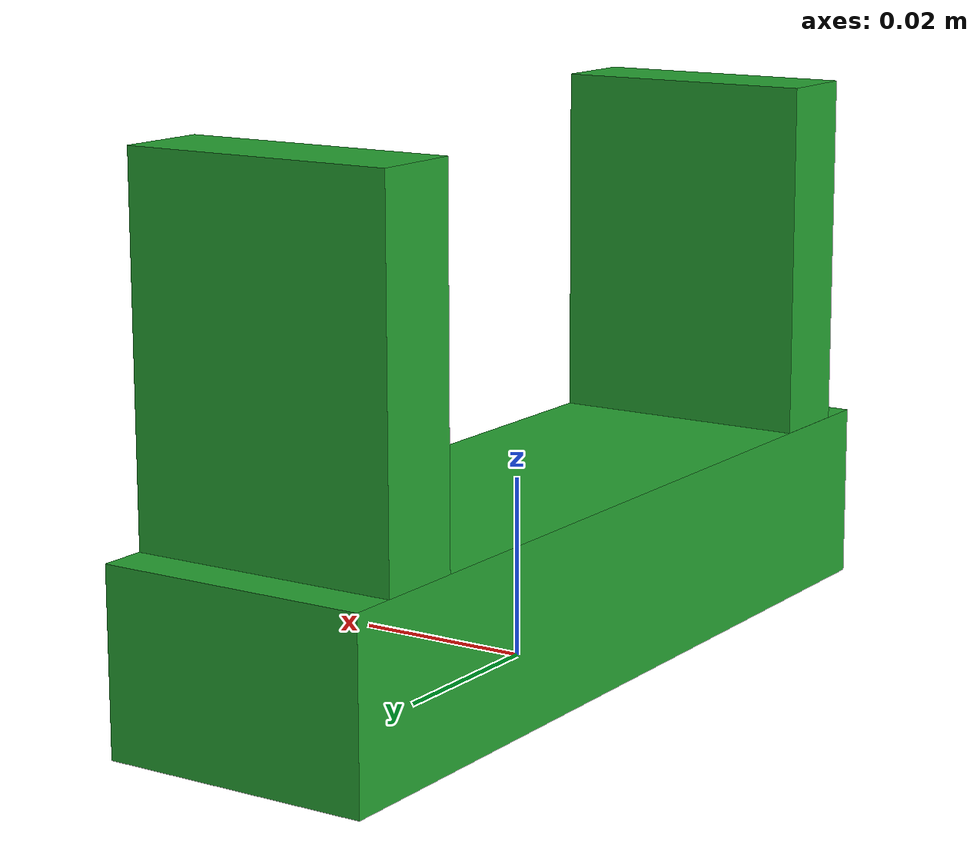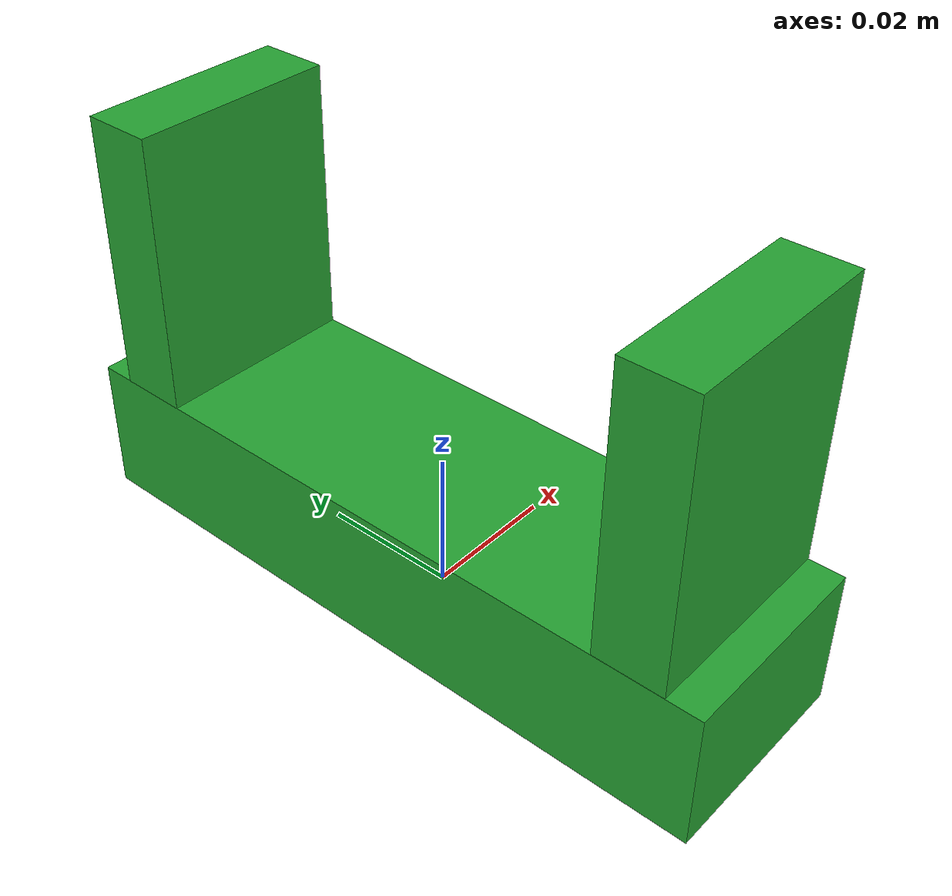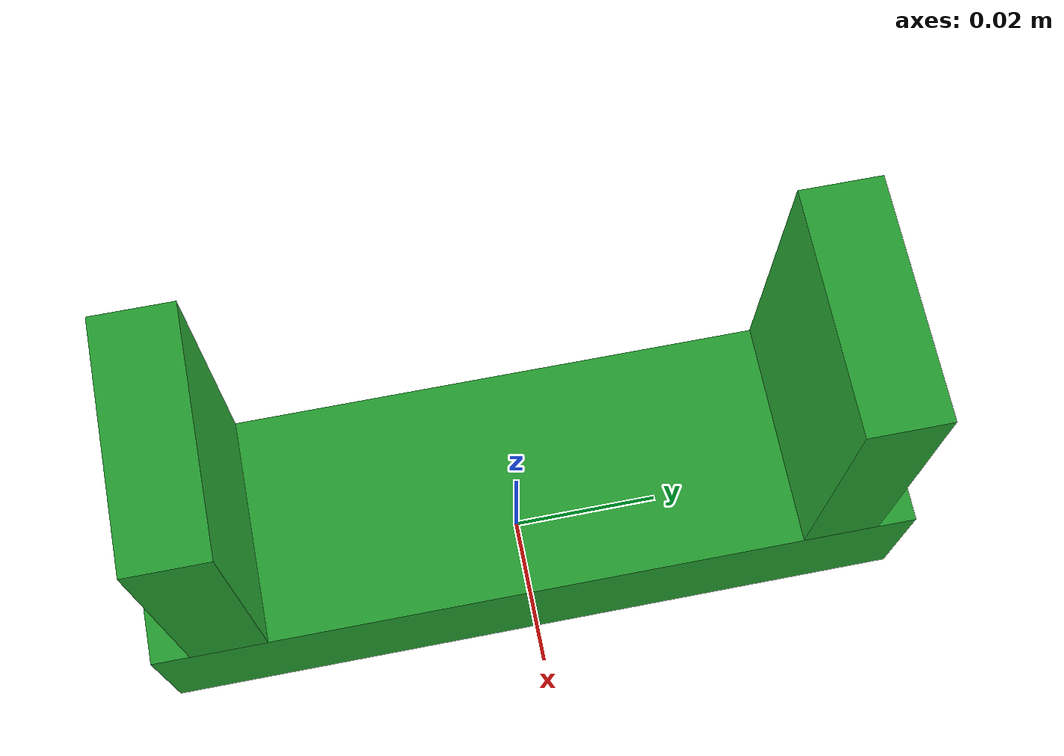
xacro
<?xml version="1.0"?>
<robot xmlns:xacro="http://www.ros.org/wiki/xacro">

    <link name="gripper_base_link">
        <visual>
            <geometry>
                <box size="0.1 0.03 0.02" />
            </geometry>
            <origin xyz="0 0 0.01" rpy="0 0 1.57" />
            <material name="dark_green" />
        </visual>
        <collision>
            <geometry>
                <box size="0.1 0.03 0.02" />
            </geometry>
            <origin xyz="0 0 0.01" rpy="0 0 1.57" />
        </collision>
    </link>

    <link name="gripper_left_finger_link">
        <visual>
            <geometry>
                <box size="0.01 0.03 0.04" />
            </geometry>
            <origin xyz="0 0 0.02" rpy="0 0 1.57" />
            <material name="light_green" />
        </visual>
        <collision>
            <geometry>
                <box size="0.01 0.03 0.04" />
            </geometry>
            <origin xyz="0 0 0.02" rpy="0 0 1.57" />
        </collision>
    </link>

    <link name="gripper_right_finger_link">
        <visual>
            <geometry>
                <box size="0.01 0.03 0.04" />
            </geometry>
            <origin xyz="0 0 0.02" rpy="0 0 1.57" />
            <material name="light_green" />
        </visual>
        <collision>
            <geometry>
                <box size="0.01 0.03 0.04" />
            </geometry>
            <origin xyz="0 0 0.02" rpy="0 0 1.57" />
        </collision>
    </link>

    <joint name="gripper_left_finger_joint" type="prismatic">
        <parent link="gripper_base_link" />
        <child link="gripper_left_finger_link" />
        <origin xyz="0 -0.04 0.02" rpy="0 0 0" />
        <axis xyz="0 1 0" />
        <limit effort="1000.0" velocity="1.0" lower="0.0" upper="0.035" />
    </joint>

    <joint name="gripper_right_finger_joint" type="prismatic">
        <parent link="gripper_base_link" />
        <child link="gripper_right_finger_link" />
        <origin xyz="0 0.04 0.02" rpy="0 0 0" />
        <axis xyz="0 1 0" />
        <mimic joint="gripper_left_finger_joint" multiplier="-1.0" />
        <limit effort="1000.0" velocity="1.0" lower="-0.035" upper="0.0" />
    </joint>

</robot>
